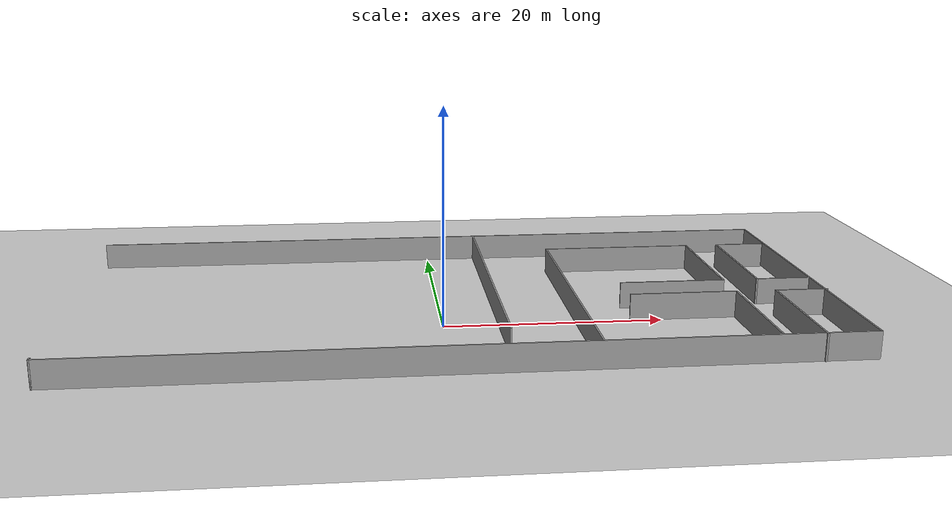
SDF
<sdf version="1.6">
 <world name="default">
  <light name="sun" type="directional">
   <pose>0 0 10 0 -0 0</pose>
   <diffuse>0.8 0.8 0.8 1</diffuse>
   <specular>0.1 0.1 0.1 1</specular>
   <attenuation>
    <range>1000</range>
    <constant>0.9</constant>
    <linear>0.01</linear>
    <quadratic>0.001</quadratic>
   </attenuation>
   <direction>-0.5 0.5 -1</direction>
  </light>
  <model name="ground_plane">
   <static>1</static>
   <link name="link">
    <collision name="collision">
     <geometry><plane><normal>0 0 1</normal><size>100 100</size></plane></geometry>
     <surface><friction><ode><mu>100</mu><mu2>50</mu2></ode></friction></surface>
    </collision>
    <visual name="visual">
     <cast_shadows>0</cast_shadows>
     <geometry><plane><normal>0 0 1</normal><size>100 100</size></plane></geometry>
     <material>
      <script><uri>file://media/materials/scripts/gazebo.material</uri><name>Gazebo/Grey</name></script>
     </material>
    </visual>
   </link>
  </model>
  <gravity>0 0 -9.8</gravity>
  <magnetic_field>6e-06 2.3e-05 -4.2e-05</magnetic_field>
  <atmosphere type="adiabatic"/>
  <physics name="default_physics" default="0" type="ode">
   <max_step_size>0.001</max_step_size>
   <real_time_factor>1</real_time_factor>
   <real_time_update_rate>1000</real_time_update_rate>
  </physics>
  <scene><ambient>0.4 0.4 0.4 1</ambient><background>0.7 0.7 0.7 1</background><shadows>1</shadows></scene>
  <spherical_coordinates>
   <surface_model>EARTH_WGS84</surface_model>
   <latitude_deg>0</latitude_deg>
   <longitude_deg>0</longitude_deg>
   <elevation>0</elevation>
   <heading_deg>0</heading_deg>
  </spherical_coordinates>
  <model name="test_walls">
   <pose>0.912374 4.94715 0 0 -0 0</pose>
   <link name="Wall_10">
    <collision name="Wall_10_Collision">
     <geometry><box><size>26 0.15 2.5</size></box></geometry>
     <pose>0 0 1.25 0 -0 0</pose>
    </collision>
    <visual name="Wall_10_Visual">
     <pose>0 0 1.25 0 -0 0</pose>
     <geometry><box><size>26 0.15 2.5</size></box></geometry>
     <material>
      <script><uri>file://media/materials/scripts/gazebo.material</uri><name>Gazebo/Grey</name></script>
      <ambient>1 1 1 1</ambient>
     </material>
    </visual>
    <pose>11.1543 -2.68976 0 0 -0 1.5708</pose>
   </link>
   <link name="Wall_11">
    <collision name="Wall_11_Collision">
     <geometry><box><size>15 0.15 2.5</size></box></geometry>
     <pose>0 0 1.25 0 -0 0</pose>
    </collision>
    <visual name="Wall_11_Visual">
     <pose>0 0 1.25 0 -0 0</pose>
     <geometry><box><size>15 0.15 2.5</size></box></geometry>
     <material>
      <script><uri>file://media/materials/scripts/gazebo.material</uri><name>Gazebo/Grey</name></script>
      <ambient>1 1 1 1</ambient>
     </material>
    </visual>
    <pose>18.5793 10.2352 0 0 -0 0</pose>
   </link>
   <link name="Wall_12">
    <collision name="Wall_12_Collision">
     <geometry><box><size>11.75 0.15 2.5</size></box></geometry>
     <pose>0 0 1.25 0 -0 0</pose>
    </collision>
    <visual name="Wall_12_Visual">
     <pose>0 0 1.25 0 -0 0</pose>
     <geometry><box><size>11.75 0.15 2.5</size></box></geometry>
     <material>
      <script><uri>file://media/materials/scripts/gazebo.material</uri><name>Gazebo/Grey</name></script>
      <ambient>1 1 1 1</ambient>
     </material>
    </visual>
    <pose>26.0043 4.43523 0 0 0 -1.5708</pose>
   </link>
   <link name="Wall_13">
    <collision name="Wall_13_Collision">
     <geometry><box><size>10 0.15 2.5</size></box></geometry>
     <pose>0 0 1.25 0 -0 0</pose>
    </collision>
    <visual name="Wall_13_Visual">
     <pose>0 0 1.25 0 -0 0</pose>
     <geometry><box><size>10 0.15 2.5</size></box></geometry>
     <material>
      <script><uri>file://media/materials/scripts/gazebo.material</uri><name>Gazebo/Grey</name></script>
      <ambient>1 1 1 1</ambient>
     </material>
    </visual>
    <pose>21.0793 -1.36477 0 0 -0 3.14159</pose>
   </link>
   <link name="Wall_16">
    <collision name="Wall_16_Collision">
     <geometry><box><size>10 0.15 2.5</size></box></geometry>
     <pose>0 0 1.25 0 -0 0</pose>
    </collision>
    <visual name="Wall_16_Visual">
     <pose>0 0 1.25 0 -0 0</pose>
     <geometry><box><size>10 0.15 2.5</size></box></geometry>
     <material>
      <script><uri>file://media/materials/scripts/gazebo.material</uri><name>Gazebo/Grey</name></script>
      <ambient>1 1 1 1</ambient>
     </material>
    </visual>
    <pose>21.1717 -4.7176 0 0 -0 0</pose>
   </link>
   <link name="Wall_18">
    <collision name="Wall_18_Collision">
     <geometry><box><size>11 0.15 2.5</size></box></geometry>
     <pose>0 0 1.25 0 -0 0</pose>
    </collision>
    <visual name="Wall_18_Visual">
     <pose>0 0 1.25 0 -0 0</pose>
     <geometry><box><size>11 0.15 2.5</size></box></geometry>
     <material>
      <script><uri>file://media/materials/scripts/gazebo.material</uri><name>Gazebo/Grey</name></script>
      <ambient>1 1 1 1</ambient>
     </material>
    </visual>
    <pose>26.0967 -10.1426 0 0 0 -1.5708</pose>
   </link>
   <link name="Wall_21">
    <collision name="Wall_21_Collision">
     <geometry><box><size>28.25 0.15 2.5</size></box></geometry>
     <pose>0 0 1.25 0 -0 0</pose>
    </collision>
    <visual name="Wall_21_Visual">
     <pose>0 0 1.25 0 -0 0</pose>
     <geometry><box><size>28.25 0.15 2.5</size></box></geometry>
     <material>
      <script><uri>file://media/materials/scripts/gazebo.material</uri><name>Gazebo/Grey</name></script>
      <ambient>1 1 1 1</ambient>
     </material>
    </visual>
    <pose>4.10373 1.81693 0 0 0 -1.5708</pose>
   </link>
   <link name="Wall_23">
    <collision name="Wall_23_Collision">
     <geometry><box><size>11.25 0.15 2.5</size></box></geometry>
     <pose>0 0 1.25 0 -0 0</pose>
    </collision>
    <visual name="Wall_23_Visual">
     <pose>0 0 1.25 0 -0 0</pose>
     <geometry><box><size>11.25 0.15 2.5</size></box></geometry>
     <material>
      <script><uri>file://media/materials/scripts/gazebo.material</uri><name>Gazebo/Grey</name></script>
      <ambient>1 1 1 1</ambient>
     </material>
    </visual>
    <pose>29.7992 -10.3341 0 0 -0 1.5708</pose>
   </link>
   <link name="Wall_24">
    <collision name="Wall_24_Collision">
     <geometry><box><size>5 0.15 2.5</size></box></geometry>
     <pose>0 0 1.25 0 -0 0</pose>
    </collision>
    <visual name="Wall_24_Visual">
     <pose>0 0 1.25 0 -0 0</pose>
     <geometry><box><size>5 0.15 2.5</size></box></geometry>
     <material>
      <script><uri>file://media/materials/scripts/gazebo.material</uri><name>Gazebo/Grey</name></script>
      <ambient>1 1 1 1</ambient>
     </material>
    </visual>
    <pose>32.2242 -4.78415 0 0 -0 0</pose>
   </link>
   <link name="Wall_26">
    <collision name="Wall_26_Collision">
     <geometry><box><size>5.25 0.15 2.5</size></box></geometry>
     <pose>0 0 1.25 0 -0 0</pose>
    </collision>
    <visual name="Wall_26_Visual">
     <pose>0 0 1.25 0 -0 0</pose>
     <geometry><box><size>5.25 0.15 2.5</size></box></geometry>
     <material>
      <script><uri>file://media/materials/scripts/gazebo.material</uri><name>Gazebo/Grey</name></script>
      <ambient>1 1 1 1</ambient>
     </material>
    </visual>
    <pose>31.844 -1.37288 0 0 -0 3.14159</pose>
   </link>
   <link name="Wall_27">
    <collision name="Wall_27_Collision">
     <geometry><box><size>11.75 0.15 2.5</size></box></geometry>
     <pose>0 0 1.25 0 -0 0</pose>
    </collision>
    <visual name="Wall_27_Visual">
     <pose>0 0 1.25 0 -0 0</pose>
     <geometry><box><size>11.75 0.15 2.5</size></box></geometry>
     <material>
      <script><uri>file://media/materials/scripts/gazebo.material</uri><name>Gazebo/Grey</name></script>
      <ambient>1 1 1 1</ambient>
     </material>
    </visual>
    <pose>29.294 4.42712 0 0 -0 1.5708</pose>
   </link>
   <link name="Wall_28">
    <collision name="Wall_28_Collision">
     <geometry><box><size>5 0.15 2.5</size></box></geometry>
     <pose>0 0 1.25 0 -0 0</pose>
    </collision>
    <visual name="Wall_28_Visual">
     <pose>0 0 1.25 0 -0 0</pose>
     <geometry><box><size>5 0.15 2.5</size></box></geometry>
     <material>
      <script><uri>file://media/materials/scripts/gazebo.material</uri><name>Gazebo/Grey</name></script>
      <ambient>1 1 1 1</ambient>
     </material>
    </visual>
    <pose>31.719 10.2271 0 0 -0 0</pose>
   </link>
   <link name="Wall_5">
    <collision name="Wall_5_Collision">
     <geometry><box><size>0.5 0.15 2.5</size></box></geometry>
     <pose>0 0 1.25 0 -0 0</pose>
    </collision>
    <visual name="Wall_5_Visual">
     <pose>0 0 1.25 0 -0 0</pose>
     <geometry><box><size>0.5 0.15 2.5</size></box></geometry>
     <material>
      <script><uri>file://media/materials/scripts/gazebo.material</uri><name>Gazebo/Grey</name></script>
      <ambient>1 1 1 1</ambient>
     </material>
    </visual>
    <pose>-33.8992 -15.5409 0 0 0 -1.5708</pose>
   </link>
   <link name="Wall_6">
    <collision name="Wall_6_Collision">
     <geometry><box><size>68.5 0.15 2.5</size></box></geometry>
     <pose>0 0 1.25 0 -0 0</pose>
    </collision>
    <visual name="Wall_6_Visual">
     <pose>0 0 1.25 0 -0 0</pose>
     <geometry><box><size>68.5 0.15 2.5</size></box></geometry>
     <material>
      <script><uri>file://media/materials/scripts/gazebo.material</uri><name>Gazebo/Grey</name></script>
      <ambient>1 1 1 1</ambient>
     </material>
    </visual>
    <pose>0.275805 -15.7159 0 0 -0 0</pose>
   </link>
   <link name="Wall_7">
    <collision name="Wall_7_Collision">
     <geometry><box><size>31.75 0.15 2.5</size></box></geometry>
     <pose>0 0 1.25 0 -0 0</pose>
    </collision>
    <visual name="Wall_7_Visual">
     <pose>0 0 1.25 0 -0 0</pose>
     <geometry><box><size>31.75 0.15 2.5</size></box></geometry>
     <material>
      <script><uri>file://media/materials/scripts/gazebo.material</uri><name>Gazebo/Grey</name></script>
      <ambient>1 1 1 1</ambient>
     </material>
    </visual>
    <pose>34.4508 0.084149 0 0 -0 1.5708</pose>
   </link>
   <link name="Wall_8">
    <collision name="Wall_8_Collision">
     <geometry><box><size>69.25 0.15 2.5</size></box></geometry>
     <pose>0 0 1.25 0 -0 0</pose>
    </collision>
    <visual name="Wall_8_Visual">
     <pose>0 0 1.25 0 -0 0</pose>
     <geometry><box><size>69.25 0.15 2.5</size></box></geometry>
     <material>
      <script><uri>file://media/materials/scripts/gazebo.material</uri><name>Gazebo/Grey</name></script>
      <ambient>1 1 1 1</ambient>
     </material>
    </visual>
    <pose>-0.099195 15.8841 0 0 -0 3.14159</pose>
   </link>
   <static>1</static>
  </model>
 </world>
</sdf>
